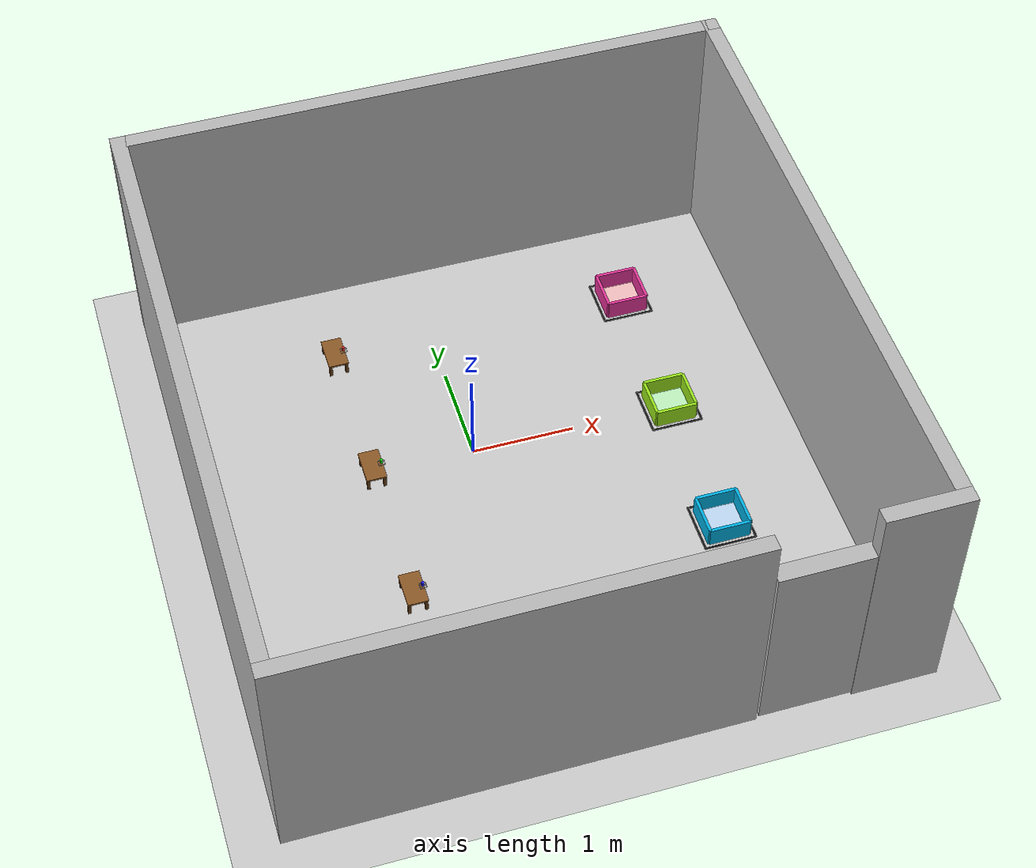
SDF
<sdf version='1.7'>
  <world name='default'>
    <!-- IFRA Link Attacher plugin for pick-and-place -->
    <plugin name="gazebo_link_attacher" filename="libgazebo_link_attacher.so"/>

    <light name='sun' type='directional'>
      <cast_shadows>1</cast_shadows>
      <pose>0 0 10 0 -0 0</pose>
      <diffuse>0.8 0.8 0.8 1</diffuse>
      <specular>0.2 0.2 0.2 1</specular>
      <attenuation>
        <range>1000</range>
        <constant>0.9</constant>
        <linear>0.01</linear>
        <quadratic>0.001</quadratic>
      </attenuation>
      <direction>-0.5 0.1 -0.9</direction>
    </light>

    <model name='ground_plane'>
      <static>1</static>
      <link name='link'>
        <collision name='collision'>
          <geometry>
            <plane>
              <normal>0 0 1</normal>
              <size>100 100</size>
            </plane>
          </geometry>
          <surface>
            <friction>
              <ode><mu>100</mu><mu2>50</mu2></ode>
            </friction>
          </surface>
        </collision>
        <visual name='visual'>
          <cast_shadows>0</cast_shadows>
          <geometry>
            <plane>
              <normal>0 0 1</normal>
              <size>100 100</size>
            </plane>
          </geometry>
          <material>
            <script>
              <uri>file://media/materials/scripts/gazebo.material</uri>
              <n>Gazebo/Grey</n>
            </script>
          </material>
        </visual>
      </link>
    </model>

    <gravity>0 0 -9.8</gravity>
    <physics type='ode'>
      <max_step_size>0.001</max_step_size>
      <real_time_factor>1</real_time_factor>
      <real_time_update_rate>1000.0</real_time_update_rate>
      <ode>
        <solver>
          <type>quick</type>
          <iters>150</iters>
          <precon_iters>0</precon_iters>
          <sor>1.400000</sor>
          <use_dynamic_moi_rescaling>1</use_dynamic_moi_rescaling>
        </solver>
        <constraints>
          <cfm>0.00001</cfm>
          <erp>0.2</erp>
          <contact_max_correcting_vel>2000.000000</contact_max_correcting_vel>
          <contact_surface_layer>0.01000</contact_surface_layer>
        </constraints>
      </ode>
    </physics>

    <scene>
      <ambient>0.4 0.4 0.4 1</ambient>
      <background>0.7 0.7 0.7 1</background>
      <shadows>1</shadows>
    </scene>

    <!-- Gazebo ROS State plugin -->
    <plugin name="gazebo_ros_state" filename="libgazebo_ros_state.so">
      <ros><namespace>/</namespace></ros>
      <update_rate>50</update_rate>
    </plugin>

    <!-- Walls (Room) -->
    <model name='room_walls'>
      <pose>-2.8231 -0.802565 0 0 0 0</pose>
      <static>1</static>
      <link name='Wall_17'>
        <collision name='Wall_17_Collision'>
          <pose>0 0 1.25 0 0 0</pose>
          <geometry><box><size>6.25 0.15 2.5</size></box></geometry>
        </collision>
        <visual name='Wall_17_Visual'>
          <pose>0 0 1.25 0 0 0</pose>
          <geometry><box><size>6.25 0.15 2.5</size></box></geometry>
          <material>
            <script>
              <uri>file://media/materials/scripts/gazebo.material</uri>
              <n>Gazebo/Bricks</n>
            </script>
          </material>
        </visual>
        <pose>0.155872 0.298732 0 0 0 -1.5708</pose>
      </link>
      <link name='Wall_18'>
        <pose>3.08087 -2.75127 0 0 0 0</pose>
        <collision name='Wall_18_Collision_0'>
          <pose>-0.860141 0 1.25 0 0 0</pose>
          <geometry><box><size>4.27972 0.15 2.5</size></box></geometry>
        </collision>
        <visual name='Wall_18_Visual_0'>
          <pose>-0.860141 0 1.25 0 0 0</pose>
          <geometry><box><size>4.27972 0.15 2.5</size></box></geometry>
          <material>
            <script>
              <uri>file://media/materials/scripts/gazebo.material</uri>
              <n>Gazebo/Bricks</n>
            </script>
          </material>
        </visual>
        <collision name='Wall_18_Collision_1'>
          <pose>2.58986 0 1.25 0 0 0</pose>
          <geometry><box><size>0.820282 0.15 2.5</size></box></geometry>
        </collision>
        <visual name='Wall_18_Visual_1'>
          <pose>2.58986 0 1.25 0 0 0</pose>
          <geometry><box><size>0.820282 0.15 2.5</size></box></geometry>
          <material>
            <script>
              <uri>file://media/materials/scripts/gazebo.material</uri>
              <n>Gazebo/Bricks</n>
            </script>
          </material>
        </visual>
      </link>
      <link name='Wall_19'>
        <collision name='Wall_19_Collision'>
          <pose>0 0 1.25 0 0 0</pose>
          <geometry><box><size>6.25 0.15 2.5</size></box></geometry>
        </collision>
        <visual name='Wall_19_Visual'>
          <pose>0 0 1.25 0 0 0</pose>
          <geometry><box><size>6.25 0.15 2.5</size></box></geometry>
          <material>
            <script>
              <uri>file://media/materials/scripts/gazebo.material</uri>
              <n>Gazebo/Bricks</n>
            </script>
          </material>
        </visual>
        <pose>6.00587 0.298732 0 0 0 1.5708</pose>
      </link>
      <link name='Wall_20'>
        <collision name='Wall_20_Collision'>
          <pose>0 0 1.25 0 0 0</pose>
          <geometry><box><size>6 0.15 2.5</size></box></geometry>
        </collision>
        <visual name='Wall_20_Visual'>
          <pose>0 0 1.25 0 0 0</pose>
          <geometry><box><size>6 0.15 2.5</size></box></geometry>
          <material>
            <script>
              <uri>file://media/materials/scripts/gazebo.material</uri>
              <n>Gazebo/Bricks</n>
            </script>
          </material>
        </visual>
        <pose>3.08087 3.34873 0 0 0 3.14159</pose>
      </link>
    </model>

    <!-- Door -->
    <model name='door_model'>
      <pose>-0.71664 2.7166 0.026996 0 0 0</pose>
      <static>1</static>
      <link name='Door_1'>
        <collision name='Door_1_Collision'>
          <pose>0 0 1 0 0 0</pose>
          <geometry><box><size>0.9 0.17 2</size></box></geometry>
        </collision>
        <visual name='Door_1_Visual'>
          <pose>0 0 1 0 0 0</pose>
          <geometry><box><size>0.9 0.17 2</size></box></geometry>
          <material>
            <script>
              <uri>file://media/materials/scripts/gazebo.material</uri>
              <n>Gazebo/Grey</n>
            </script>
          </material>
        </visual>
        <pose>2.72983 -6.25268 0 0 0 0</pose>
      </link>
    </model>

    <!-- ==================== TABLES (left side) ==================== -->

    <!-- Table 1 (top-left) — green cube on top -->
    <model name='pick_table'>
      <static>1</static>
      <pose>-1.0 1.5 0.0 0 0 0</pose>
      <link name='table_link'>
        <collision name='top_collision'>
          <pose>0 0 0.14 0 0 0</pose>
          <geometry><box><size>0.20 0.35 0.02</size></box></geometry>
        </collision>
        <visual name='top_visual'>
          <pose>0 0 0.14 0 0 0</pose>
          <geometry><box><size>0.20 0.35 0.02</size></box></geometry>
          <material>
            <ambient>0.55 0.35 0.15 1</ambient>
            <diffuse>0.55 0.35 0.15 1</diffuse>
          </material>
        </visual>
        <visual name='leg1'>
          <pose>0.08 0.15 0.065 0 0 0</pose>
          <geometry><box><size>0.03 0.03 0.13</size></box></geometry>
          <material><ambient>0.4 0.25 0.1 1</ambient></material>
        </visual>
        <visual name='leg2'>
          <pose>-0.08 0.15 0.065 0 0 0</pose>
          <geometry><box><size>0.03 0.03 0.13</size></box></geometry>
          <material><ambient>0.4 0.25 0.1 1</ambient></material>
        </visual>
        <visual name='leg3'>
          <pose>0.08 -0.15 0.065 0 0 0</pose>
          <geometry><box><size>0.03 0.03 0.13</size></box></geometry>
          <material><ambient>0.4 0.25 0.1 1</ambient></material>
        </visual>
        <visual name='leg4'>
          <pose>-0.08 -0.15 0.065 0 0 0</pose>
          <geometry><box><size>0.03 0.03 0.13</size></box></geometry>
          <material><ambient>0.4 0.25 0.1 1</ambient></material>
        </visual>
      </link>
    </model>

    <!-- Red cube on Table 1 (dynamic — physically graspable) -->
    <model name='red_cube'>
      <static>false</static>
      <pose>-0.91 1.5 0.175 0 0 0</pose>
      <link name='link'>
        <gravity>true</gravity>
        <kinematic>false</kinematic>
        <inertial>
          <mass>0.001</mass>
          <inertia>
            <ixx>0.0000015</ixx><iyy>0.0000015</iyy><izz>0.0000005</izz>
            <ixy>0</ixy><ixz>0</ixz><iyz>0</iyz>
          </inertia>
        </inertial>
        <collision name='collision'>
          <geometry><box><size>0.025 0.025 0.045</size></box></geometry>
          <surface>
            <friction>
              <ode><mu>1000.0</mu><mu2>1000.0</mu2><fdir1>0 0 0</fdir1></ode>
              <torsional>
                <coefficient>1000.0</coefficient>
                <use_patch_radius>true</use_patch_radius>
                <patch_radius>0.05</patch_radius>
              </torsional>
            </friction>
            <contact>
              <ode>
                <kp>500000.0</kp><kd>50.0</kd>
                <max_vel>0.0</max_vel>
                <min_depth>0.002</min_depth>
              </ode>
            </contact>
          </surface>
        </collision>
        <visual name='visual'>
          <geometry><box><size>0.025 0.025 0.045</size></box></geometry>
          <material>
            <ambient>0.9 0.2 0.2 1</ambient>
            <diffuse>0.95 0.2 0.2 1</diffuse>
            <specular>0.3 0.3 0.3 1</specular>
            <emissive>0.3 0.05 0.05 1</emissive>
          </material>
        </visual>
      </link>
    </model>

    <!-- Table 2 (middle-left) — blue cube on top -->
    <model name='pick_table_2'>
      <static>1</static>
      <pose>-1.0 0.0 0.0 0 0 0</pose>
      <link name='table_link'>
        <collision name='top_collision'>
          <pose>0 0 0.14 0 0 0</pose>
          <geometry><box><size>0.20 0.35 0.02</size></box></geometry>
        </collision>
        <visual name='top_visual'>
          <pose>0 0 0.14 0 0 0</pose>
          <geometry><box><size>0.20 0.35 0.02</size></box></geometry>
          <material>
            <ambient>0.55 0.35 0.15 1</ambient>
            <diffuse>0.55 0.35 0.15 1</diffuse>
          </material>
        </visual>
        <visual name='leg1'><pose>0.08 0.15 0.065 0 0 0</pose>
          <geometry><box><size>0.03 0.03 0.13</size></box></geometry>
          <material><ambient>0.4 0.25 0.1 1</ambient></material></visual>
        <visual name='leg2'><pose>-0.08 0.15 0.065 0 0 0</pose>
          <geometry><box><size>0.03 0.03 0.13</size></box></geometry>
          <material><ambient>0.4 0.25 0.1 1</ambient></material></visual>
        <visual name='leg3'><pose>0.08 -0.15 0.065 0 0 0</pose>
          <geometry><box><size>0.03 0.03 0.13</size></box></geometry>
          <material><ambient>0.4 0.25 0.1 1</ambient></material></visual>
        <visual name='leg4'><pose>-0.08 -0.15 0.065 0 0 0</pose>
          <geometry><box><size>0.03 0.03 0.13</size></box></geometry>
          <material><ambient>0.4 0.25 0.1 1</ambient></material></visual>
      </link>
    </model>

    <!-- Green cube on Table 2 (dynamic — physically graspable) -->
    <model name='green_cube'>
      <static>false</static>
      <pose>-0.91 0.0 0.175 0 0 0</pose>
      <link name='link'>
        <gravity>true</gravity>
        <kinematic>false</kinematic>
        <inertial>
          <mass>0.001</mass>
          <inertia>
            <ixx>0.0000015</ixx><iyy>0.0000015</iyy><izz>0.0000005</izz>
            <ixy>0</ixy><ixz>0</ixz><iyz>0</iyz>
          </inertia>
        </inertial>
        <collision name='collision'>
          <geometry><box><size>0.025 0.025 0.045</size></box></geometry>
          <surface>
            <friction>
              <ode><mu>1000.0</mu><mu2>1000.0</mu2><fdir1>0 0 0</fdir1></ode>
              <torsional>
                <coefficient>1000.0</coefficient>
                <use_patch_radius>true</use_patch_radius>
                <patch_radius>0.05</patch_radius>
              </torsional>
            </friction>
            <contact>
              <ode>
                <kp>500000.0</kp><kd>50.0</kd>
                <max_vel>0.0</max_vel>
                <min_depth>0.002</min_depth>
              </ode>
            </contact>
          </surface>
        </collision>
        <visual name='visual'>
          <geometry><box><size>0.025 0.025 0.045</size></box></geometry>
          <material>
            <ambient>0.1 0.8 0.1 1</ambient>
            <diffuse>0.1 0.9 0.1 1</diffuse>
            <specular>0.3 0.3 0.3 1</specular>
            <emissive>0.05 0.3 0.05 1</emissive>
          </material>
        </visual>
      </link>
    </model>

    <!-- Table 3 (bottom-left) — red cube on top -->
    <model name='pick_table_3'>
      <static>1</static>
      <pose>-1.0 -1.5 0.0 0 0 0</pose>
      <link name='table_link'>
        <collision name='top_collision'>
          <pose>0 0 0.14 0 0 0</pose>
          <geometry><box><size>0.20 0.35 0.02</size></box></geometry>
        </collision>
        <visual name='top_visual'>
          <pose>0 0 0.14 0 0 0</pose>
          <geometry><box><size>0.20 0.35 0.02</size></box></geometry>
          <material>
            <ambient>0.55 0.35 0.15 1</ambient>
            <diffuse>0.55 0.35 0.15 1</diffuse>
          </material>
        </visual>
        <visual name='leg1'><pose>0.08 0.15 0.065 0 0 0</pose>
          <geometry><box><size>0.03 0.03 0.13</size></box></geometry>
          <material><ambient>0.4 0.25 0.1 1</ambient></material></visual>
        <visual name='leg2'><pose>-0.08 0.15 0.065 0 0 0</pose>
          <geometry><box><size>0.03 0.03 0.13</size></box></geometry>
          <material><ambient>0.4 0.25 0.1 1</ambient></material></visual>
        <visual name='leg3'><pose>0.08 -0.15 0.065 0 0 0</pose>
          <geometry><box><size>0.03 0.03 0.13</size></box></geometry>
          <material><ambient>0.4 0.25 0.1 1</ambient></material></visual>
        <visual name='leg4'><pose>-0.08 -0.15 0.065 0 0 0</pose>
          <geometry><box><size>0.03 0.03 0.13</size></box></geometry>
          <material><ambient>0.4 0.25 0.1 1</ambient></material></visual>
      </link>
    </model>

    <!-- Blue cube on Table 3 (dynamic — physically graspable) -->
    <model name='blue_cube'>
      <static>false</static>
      <pose>-0.91 -1.5 0.175 0 0 0</pose>
      <link name='link'>
        <gravity>true</gravity>
        <kinematic>false</kinematic>
        <inertial>
          <mass>0.001</mass>
          <inertia>
            <ixx>0.0000015</ixx><iyy>0.0000015</iyy><izz>0.0000005</izz>
            <ixy>0</ixy><ixz>0</ixz><iyz>0</iyz>
          </inertia>
        </inertial>
        <collision name='collision'>
          <geometry><box><size>0.025 0.025 0.045</size></box></geometry>
          <surface>
            <friction>
              <ode><mu>1000.0</mu><mu2>1000.0</mu2><fdir1>0 0 0</fdir1></ode>
              <torsional>
                <coefficient>1000.0</coefficient>
                <use_patch_radius>true</use_patch_radius>
                <patch_radius>0.05</patch_radius>
              </torsional>
            </friction>
            <contact>
              <ode>
                <kp>500000.0</kp><kd>50.0</kd>
                <max_vel>0.0</max_vel>
                <min_depth>0.002</min_depth>
              </ode>
            </contact>
          </surface>
        </collision>
        <visual name='visual'>
          <geometry><box><size>0.025 0.025 0.045</size></box></geometry>
          <material>
            <ambient>0.1 0.1 0.9 1</ambient>
            <diffuse>0.1 0.1 0.95 1</diffuse>
            <specular>0.3 0.3 0.3 1</specular>
            <emissive>0.05 0.05 0.3 1</emissive>
          </material>
        </visual>
      </link>
    </model>

    <!-- ==================== DROP BOXES (right side) ==================== -->

    <!-- Red box (top-right) — drop zone (magenta/pink to distinguish from red cube) -->
    <model name='red_box'>
      <static>1</static>
      <pose>2.0 1.5 0.0 0 0 0</pose>
      <link name='link'>
        <visual name='floor_visual'>
          <pose>0 0 0.005 0 0 0</pose>
          <geometry><box><size>0.40 0.40 0.01</size></box></geometry>
          <material><ambient>0.95 0.75 0.75 1</ambient><diffuse>0.95 0.75 0.75 1</diffuse></material>
        </visual>
        <collision name='floor_c'>
          <pose>0 0 0.005 0 0 0</pose>
          <geometry><box><size>0.40 0.40 0.01</size></box></geometry>
          <surface>
            <bounce>
              <restitution_coefficient>0.5</restitution_coefficient>
              <threshold>0.01</threshold>
            </bounce>
            <friction>
              <ode><mu>1.0</mu><mu2>1.0</mu2></ode>
            </friction>
            <contact>
              <ode>
                <kp>1000000</kp><kd>100</kd>
                <max_vel>1.0</max_vel>
                <min_depth>0.001</min_depth>
              </ode>
            </contact>
          </surface>
        </collision>
        <visual name='wall_front_v'>
          <pose>0.20 0 0.10 0 0 0</pose>
          <geometry><box><size>0.03 0.40 0.20</size></box></geometry>
          <material><ambient>0.9 0.2 0.6 1</ambient><diffuse>0.9 0.2 0.6 1</diffuse></material>
        </visual>
        <collision name='wall_front_c'>
          <pose>0.20 0 0.10 0 0 0</pose>
          <geometry><box><size>0.03 0.40 0.20</size></box></geometry>
          <surface>
            <bounce>
              <restitution_coefficient>0.5</restitution_coefficient>
              <threshold>0.01</threshold>
            </bounce>
            <friction>
              <ode><mu>1.0</mu><mu2>1.0</mu2></ode>
            </friction>
            <contact>
              <ode>
                <kp>1000000</kp><kd>100</kd>
                <max_vel>1.0</max_vel>
                <min_depth>0.001</min_depth>
              </ode>
            </contact>
          </surface>
        </collision>
        <visual name='wall_back_v'>
          <pose>-0.20 0 0.10 0 0 0</pose>
          <geometry><box><size>0.03 0.40 0.20</size></box></geometry>
          <material><ambient>0.9 0.2 0.6 1</ambient><diffuse>0.9 0.2 0.6 1</diffuse></material>
        </visual>
        <collision name='wall_back_c'>
          <pose>-0.20 0 0.10 0 0 0</pose>
          <geometry><box><size>0.03 0.40 0.20</size></box></geometry>
          <surface>
            <bounce>
              <restitution_coefficient>0.5</restitution_coefficient>
              <threshold>0.01</threshold>
            </bounce>
            <friction>
              <ode><mu>1.0</mu><mu2>1.0</mu2></ode>
            </friction>
            <contact>
              <ode>
                <kp>1000000</kp><kd>100</kd>
                <max_vel>1.0</max_vel>
                <min_depth>0.001</min_depth>
              </ode>
            </contact>
          </surface>
        </collision>
        <visual name='wall_left_v'>
          <pose>0 0.20 0.10 0 0 0</pose>
          <geometry><box><size>0.40 0.03 0.20</size></box></geometry>
          <material><ambient>0.9 0.2 0.6 1</ambient><diffuse>0.9 0.2 0.6 1</diffuse></material>
        </visual>
        <collision name='wall_left_c'>
          <pose>0 0.20 0.10 0 0 0</pose>
          <geometry><box><size>0.40 0.03 0.20</size></box></geometry>
          <surface>
            <bounce>
              <restitution_coefficient>0.5</restitution_coefficient>
              <threshold>0.01</threshold>
            </bounce>
            <friction>
              <ode><mu>1.0</mu><mu2>1.0</mu2></ode>
            </friction>
            <contact>
              <ode>
                <kp>1000000</kp><kd>100</kd>
                <max_vel>1.0</max_vel>
                <min_depth>0.001</min_depth>
              </ode>
            </contact>
          </surface>
        </collision>
        <visual name='wall_right_v'>
          <pose>0 -0.20 0.10 0 0 0</pose>
          <geometry><box><size>0.40 0.03 0.20</size></box></geometry>
          <material><ambient>0.9 0.2 0.6 1</ambient><diffuse>0.9 0.2 0.6 1</diffuse></material>
        </visual>
        <collision name='wall_right_c'>
          <pose>0 -0.20 0.10 0 0 0</pose>
          <geometry><box><size>0.40 0.03 0.20</size></box></geometry>
          <surface>
            <bounce>
              <restitution_coefficient>0.5</restitution_coefficient>
              <threshold>0.01</threshold>
            </bounce>
            <friction>
              <ode><mu>1.0</mu><mu2>1.0</mu2></ode>
            </friction>
            <contact>
              <ode>
                <kp>1000000</kp><kd>100</kd>
                <max_vel>1.0</max_vel>
                <min_depth>0.001</min_depth>
              </ode>
            </contact>
          </surface>
        </collision>
      </link>
    </model>

    <!-- Green box (middle-right) — drop zone (yellow-lime to distinguish from green cube) -->
    <model name='green_box'>
      <static>1</static>
      <pose>2.0 0.0 0.0 0 0 0</pose>
      <link name='link'>
        <visual name='floor_visual'>
          <pose>0 0 0.005 0 0 0</pose>
          <geometry><box><size>0.40 0.40 0.01</size></box></geometry>
          <material><ambient>0.75 0.95 0.75 1</ambient><diffuse>0.75 0.95 0.75 1</diffuse></material>
        </visual>
        <collision name='floor_c'>
          <pose>0 0 0.005 0 0 0</pose>
          <geometry><box><size>0.40 0.40 0.01</size></box></geometry>
          <surface>
            <bounce>
              <restitution_coefficient>0.5</restitution_coefficient>
              <threshold>0.01</threshold>
            </bounce>
            <friction>
              <ode><mu>1.0</mu><mu2>1.0</mu2></ode>
            </friction>
            <contact>
              <ode>
                <kp>1000000</kp><kd>100</kd>
                <max_vel>1.0</max_vel>
                <min_depth>0.001</min_depth>
              </ode>
            </contact>
          </surface>
        </collision>
        <visual name='wall_front_v'>
          <pose>0.20 0 0.10 0 0 0</pose>
          <geometry><box><size>0.03 0.40 0.20</size></box></geometry>
          <material><ambient>0.6 0.9 0.1 1</ambient><diffuse>0.6 0.9 0.1 1</diffuse></material>
        </visual>
        <collision name='wall_front_c'>
          <pose>0.20 0 0.10 0 0 0</pose>
          <geometry><box><size>0.03 0.40 0.20</size></box></geometry>
          <surface>
            <bounce>
              <restitution_coefficient>0.5</restitution_coefficient>
              <threshold>0.01</threshold>
            </bounce>
            <friction>
              <ode><mu>1.0</mu><mu2>1.0</mu2></ode>
            </friction>
            <contact>
              <ode>
                <kp>1000000</kp><kd>100</kd>
                <max_vel>1.0</max_vel>
                <min_depth>0.001</min_depth>
              </ode>
            </contact>
          </surface>
        </collision>
        <visual name='wall_back_v'>
          <pose>-0.20 0 0.10 0 0 0</pose>
          <geometry><box><size>0.03 0.40 0.20</size></box></geometry>
          <material><ambient>0.6 0.9 0.1 1</ambient><diffuse>0.6 0.9 0.1 1</diffuse></material>
        </visual>
        <collision name='wall_back_c'>
          <pose>-0.20 0 0.10 0 0 0</pose>
          <geometry><box><size>0.03 0.40 0.20</size></box></geometry>
          <surface>
            <bounce>
              <restitution_coefficient>0.5</restitution_coefficient>
              <threshold>0.01</threshold>
            </bounce>
            <friction>
              <ode><mu>1.0</mu><mu2>1.0</mu2></ode>
            </friction>
            <contact>
              <ode>
                <kp>1000000</kp><kd>100</kd>
                <max_vel>1.0</max_vel>
                <min_depth>0.001</min_depth>
              </ode>
            </contact>
          </surface>
        </collision>
        <visual name='wall_left_v'>
          <pose>0 0.20 0.10 0 0 0</pose>
          <geometry><box><size>0.40 0.03 0.20</size></box></geometry>
          <material><ambient>0.6 0.9 0.1 1</ambient><diffuse>0.6 0.9 0.1 1</diffuse></material>
        </visual>
        <collision name='wall_left_c'>
          <pose>0 0.20 0.10 0 0 0</pose>
          <geometry><box><size>0.40 0.03 0.20</size></box></geometry>
          <surface>
            <bounce>
              <restitution_coefficient>0.5</restitution_coefficient>
              <threshold>0.01</threshold>
            </bounce>
            <friction>
              <ode><mu>1.0</mu><mu2>1.0</mu2></ode>
            </friction>
            <contact>
              <ode>
                <kp>1000000</kp><kd>100</kd>
                <max_vel>1.0</max_vel>
                <min_depth>0.001</min_depth>
              </ode>
            </contact>
          </surface>
        </collision>
        <visual name='wall_right_v'>
          <pose>0 -0.20 0.10 0 0 0</pose>
          <geometry><box><size>0.40 0.03 0.20</size></box></geometry>
          <material><ambient>0.6 0.9 0.1 1</ambient><diffuse>0.6 0.9 0.1 1</diffuse></material>
        </visual>
        <collision name='wall_right_c'>
          <pose>0 -0.20 0.10 0 0 0</pose>
          <geometry><box><size>0.40 0.03 0.20</size></box></geometry>
          <surface>
            <bounce>
              <restitution_coefficient>0.5</restitution_coefficient>
              <threshold>0.01</threshold>
            </bounce>
            <friction>
              <ode><mu>1.0</mu><mu2>1.0</mu2></ode>
            </friction>
            <contact>
              <ode>
                <kp>1000000</kp><kd>100</kd>
                <max_vel>1.0</max_vel>
                <min_depth>0.001</min_depth>
              </ode>
            </contact>
          </surface>
        </collision>
      </link>
    </model>

    <!-- Blue box (bottom-right) — drop zone (cyan/turquoise to distinguish from blue cube) -->
    <model name='blue_box'>
      <static>1</static>
      <pose>2.0 -1.5 0.0 0 0 0</pose>
      <link name='link'>
        <visual name='floor_visual'>
          <pose>0 0 0.005 0 0 0</pose>
          <geometry><box><size>0.40 0.40 0.01</size></box></geometry>
          <material><ambient>0.75 0.85 0.95 1</ambient><diffuse>0.75 0.85 0.95 1</diffuse></material>
        </visual>
        <collision name='floor_c'>
          <pose>0 0 0.005 0 0 0</pose>
          <geometry><box><size>0.40 0.40 0.01</size></box></geometry>
          <surface>
            <bounce>
              <restitution_coefficient>0.5</restitution_coefficient>
              <threshold>0.01</threshold>
            </bounce>
            <friction>
              <ode><mu>1.0</mu><mu2>1.0</mu2></ode>
            </friction>
            <contact>
              <ode>
                <kp>1000000</kp><kd>100</kd>
                <max_vel>1.0</max_vel>
                <min_depth>0.001</min_depth>
              </ode>
            </contact>
          </surface>
        </collision>
        <visual name='wall_front_v'>
          <pose>0.20 0 0.10 0 0 0</pose>
          <geometry><box><size>0.03 0.40 0.20</size></box></geometry>
          <material><ambient>0.0 0.7 0.9 1</ambient><diffuse>0.0 0.7 0.9 1</diffuse></material>
        </visual>
        <collision name='wall_front_c'>
          <pose>0.20 0 0.10 0 0 0</pose>
          <geometry><box><size>0.03 0.40 0.20</size></box></geometry>
          <surface>
            <bounce>
              <restitution_coefficient>0.5</restitution_coefficient>
              <threshold>0.01</threshold>
            </bounce>
            <friction>
              <ode><mu>1.0</mu><mu2>1.0</mu2></ode>
            </friction>
            <contact>
              <ode>
                <kp>1000000</kp><kd>100</kd>
                <max_vel>1.0</max_vel>
                <min_depth>0.001</min_depth>
              </ode>
            </contact>
          </surface>
        </collision>
        <visual name='wall_back_v'>
          <pose>-0.20 0 0.10 0 0 0</pose>
          <geometry><box><size>0.03 0.40 0.20</size></box></geometry>
          <material><ambient>0.0 0.7 0.9 1</ambient><diffuse>0.0 0.7 0.9 1</diffuse></material>
        </visual>
        <collision name='wall_back_c'>
          <pose>-0.20 0 0.10 0 0 0</pose>
          <geometry><box><size>0.03 0.40 0.20</size></box></geometry>
          <surface>
            <bounce>
              <restitution_coefficient>0.5</restitution_coefficient>
              <threshold>0.01</threshold>
            </bounce>
            <friction>
              <ode><mu>1.0</mu><mu2>1.0</mu2></ode>
            </friction>
            <contact>
              <ode>
                <kp>1000000</kp><kd>100</kd>
                <max_vel>1.0</max_vel>
                <min_depth>0.001</min_depth>
              </ode>
            </contact>
          </surface>
        </collision>
        <visual name='wall_left_v'>
          <pose>0 0.20 0.10 0 0 0</pose>
          <geometry><box><size>0.40 0.03 0.20</size></box></geometry>
          <material><ambient>0.0 0.7 0.9 1</ambient><diffuse>0.0 0.7 0.9 1</diffuse></material>
        </visual>
        <collision name='wall_left_c'>
          <pose>0 0.20 0.10 0 0 0</pose>
          <geometry><box><size>0.40 0.03 0.20</size></box></geometry>
          <surface>
            <bounce>
              <restitution_coefficient>0.5</restitution_coefficient>
              <threshold>0.01</threshold>
            </bounce>
            <friction>
              <ode><mu>1.0</mu><mu2>1.0</mu2></ode>
            </friction>
            <contact>
              <ode>
                <kp>1000000</kp><kd>100</kd>
                <max_vel>1.0</max_vel>
                <min_depth>0.001</min_depth>
              </ode>
            </contact>
          </surface>
        </collision>
        <visual name='wall_right_v'>
          <pose>0 -0.20 0.10 0 0 0</pose>
          <geometry><box><size>0.40 0.03 0.20</size></box></geometry>
          <material><ambient>0.0 0.7 0.9 1</ambient><diffuse>0.0 0.7 0.9 1</diffuse></material>
        </visual>
        <collision name='wall_right_c'>
          <pose>0 -0.20 0.10 0 0 0</pose>
          <geometry><box><size>0.40 0.03 0.20</size></box></geometry>
          <surface>
            <bounce>
              <restitution_coefficient>0.5</restitution_coefficient>
              <threshold>0.01</threshold>
            </bounce>
            <friction>
              <ode><mu>1.0</mu><mu2>1.0</mu2></ode>
            </friction>
            <contact>
              <ode>
                <kp>1000000</kp><kd>100</kd>
                <max_vel>1.0</max_vel>
                <min_depth>0.001</min_depth>
              </ode>
            </contact>
          </surface>
        </collision>
      </link>
    </model>

    <!-- ==================== BLACK BORDERS ==================== -->

    <!-- Black border around blue cube on Table 1 -->
    <model name='border_cube_blue'>
      <static>true</static>
      <pose>-0.91 1.5 0.151 0 0 0</pose>
      <link name='link'>
        <visual name='top'><pose>0 0.03 0 0 0 0</pose>
          <geometry><box><size>0.065 0.005 0.003</size></box></geometry>
          <material><ambient>0 0 0 1</ambient><diffuse>0 0 0 1</diffuse></material></visual>
        <visual name='bot'><pose>0 -0.03 0 0 0 0</pose>
          <geometry><box><size>0.065 0.005 0.003</size></box></geometry>
          <material><ambient>0 0 0 1</ambient><diffuse>0 0 0 1</diffuse></material></visual>
        <visual name='lft'><pose>-0.03 0 0 0 0 0</pose>
          <geometry><box><size>0.005 0.065 0.003</size></box></geometry>
          <material><ambient>0 0 0 1</ambient><diffuse>0 0 0 1</diffuse></material></visual>
        <visual name='rgt'><pose>0.03 0 0 0 0 0</pose>
          <geometry><box><size>0.005 0.065 0.003</size></box></geometry>
          <material><ambient>0 0 0 1</ambient><diffuse>0 0 0 1</diffuse></material></visual>
      </link>
    </model>

    <!-- Black border around red cube on Table 2 -->
    <model name='border_cube_red'>
      <static>true</static>
      <pose>-0.91 0.0 0.151 0 0 0</pose>
      <link name='link'>
        <visual name='top'><pose>0 0.03 0 0 0 0</pose>
          <geometry><box><size>0.065 0.005 0.003</size></box></geometry>
          <material><ambient>0 0 0 1</ambient><diffuse>0 0 0 1</diffuse></material></visual>
        <visual name='bot'><pose>0 -0.03 0 0 0 0</pose>
          <geometry><box><size>0.065 0.005 0.003</size></box></geometry>
          <material><ambient>0 0 0 1</ambient><diffuse>0 0 0 1</diffuse></material></visual>
        <visual name='lft'><pose>-0.03 0 0 0 0 0</pose>
          <geometry><box><size>0.005 0.065 0.003</size></box></geometry>
          <material><ambient>0 0 0 1</ambient><diffuse>0 0 0 1</diffuse></material></visual>
        <visual name='rgt'><pose>0.03 0 0 0 0 0</pose>
          <geometry><box><size>0.005 0.065 0.003</size></box></geometry>
          <material><ambient>0 0 0 1</ambient><diffuse>0 0 0 1</diffuse></material></visual>
      </link>
    </model>

    <!-- Black border around green cube on Table 3 -->
    <model name='border_cube_green'>
      <static>true</static>
      <pose>-0.91 -1.5 0.151 0 0 0</pose>
      <link name='link'>
        <visual name='top'><pose>0 0.03 0 0 0 0</pose>
          <geometry><box><size>0.065 0.005 0.003</size></box></geometry>
          <material><ambient>0 0 0 1</ambient><diffuse>0 0 0 1</diffuse></material></visual>
        <visual name='bot'><pose>0 -0.03 0 0 0 0</pose>
          <geometry><box><size>0.065 0.005 0.003</size></box></geometry>
          <material><ambient>0 0 0 1</ambient><diffuse>0 0 0 1</diffuse></material></visual>
        <visual name='lft'><pose>-0.03 0 0 0 0 0</pose>
          <geometry><box><size>0.005 0.065 0.003</size></box></geometry>
          <material><ambient>0 0 0 1</ambient><diffuse>0 0 0 1</diffuse></material></visual>
        <visual name='rgt'><pose>0.03 0 0 0 0 0</pose>
          <geometry><box><size>0.005 0.065 0.003</size></box></geometry>
          <material><ambient>0 0 0 1</ambient><diffuse>0 0 0 1</diffuse></material></visual>
      </link>
    </model>

    <!-- Black border around red drop zone -->
    <model name='border_drop_red'>
      <static>true</static>
      <pose>2.0 1.5 0.003 0 0 0</pose>
      <link name='link'>
        <visual name='top'><pose>0 0.25 0 0 0 0</pose>
          <geometry><box><size>0.52 0.02 0.006</size></box></geometry>
          <material><ambient>0 0 0 1</ambient><diffuse>0 0 0 1</diffuse></material></visual>
        <visual name='bot'><pose>0 -0.25 0 0 0 0</pose>
          <geometry><box><size>0.52 0.02 0.006</size></box></geometry>
          <material><ambient>0 0 0 1</ambient><diffuse>0 0 0 1</diffuse></material></visual>
        <visual name='lft'><pose>-0.25 0 0 0 0 0</pose>
          <geometry><box><size>0.02 0.52 0.006</size></box></geometry>
          <material><ambient>0 0 0 1</ambient><diffuse>0 0 0 1</diffuse></material></visual>
        <visual name='rgt'><pose>0.25 0 0 0 0 0</pose>
          <geometry><box><size>0.02 0.52 0.006</size></box></geometry>
          <material><ambient>0 0 0 1</ambient><diffuse>0 0 0 1</diffuse></material></visual>
      </link>
    </model>

    <!-- Black border around green drop zone -->
    <model name='border_drop_green'>
      <static>true</static>
      <pose>2.0 0.0 0.003 0 0 0</pose>
      <link name='link'>
        <visual name='top'><pose>0 0.25 0 0 0 0</pose>
          <geometry><box><size>0.52 0.02 0.006</size></box></geometry>
          <material><ambient>0 0 0 1</ambient><diffuse>0 0 0 1</diffuse></material></visual>
        <visual name='bot'><pose>0 -0.25 0 0 0 0</pose>
          <geometry><box><size>0.52 0.02 0.006</size></box></geometry>
          <material><ambient>0 0 0 1</ambient><diffuse>0 0 0 1</diffuse></material></visual>
        <visual name='lft'><pose>-0.25 0 0 0 0 0</pose>
          <geometry><box><size>0.02 0.52 0.006</size></box></geometry>
          <material><ambient>0 0 0 1</ambient><diffuse>0 0 0 1</diffuse></material></visual>
        <visual name='rgt'><pose>0.25 0 0 0 0 0</pose>
          <geometry><box><size>0.02 0.52 0.006</size></box></geometry>
          <material><ambient>0 0 0 1</ambient><diffuse>0 0 0 1</diffuse></material></visual>
      </link>
    </model>

    <!-- Black border around blue drop zone -->
    <model name='border_drop_blue'>
      <static>true</static>
      <pose>2.0 -1.5 0.003 0 0 0</pose>
      <link name='link'>
        <visual name='top'><pose>0 0.25 0 0 0 0</pose>
          <geometry><box><size>0.52 0.02 0.006</size></box></geometry>
          <material><ambient>0 0 0 1</ambient><diffuse>0 0 0 1</diffuse></material></visual>
        <visual name='bot'><pose>0 -0.25 0 0 0 0</pose>
          <geometry><box><size>0.52 0.02 0.006</size></box></geometry>
          <material><ambient>0 0 0 1</ambient><diffuse>0 0 0 1</diffuse></material></visual>
        <visual name='lft'><pose>-0.25 0 0 0 0 0</pose>
          <geometry><box><size>0.02 0.52 0.006</size></box></geometry>
          <material><ambient>0 0 0 1</ambient><diffuse>0 0 0 1</diffuse></material></visual>
        <visual name='rgt'><pose>0.25 0 0 0 0 0</pose>
          <geometry><box><size>0.02 0.52 0.006</size></box></geometry>
          <material><ambient>0 0 0 1</ambient><diffuse>0 0 0 1</diffuse></material></visual>
      </link>
    </model>

    <!-- Charging Dock — bottom-centre of room, against south wall -->
    <model name='charging_dock'>
      <static>1</static>
      <pose>0.5 -3.1 0.0 0 0 0</pose>
      <link name='dock_link'>
        <!-- Base platform — visual only, flush with ground so wheels roll over it -->
        <visual name='platform_v'>
          <pose>0 0 0.001 0 0 0</pose>
          <geometry><box><size>0.45 0.40 0.002</size></box></geometry>
          <material>
            <ambient>0.15 0.15 0.15 1</ambient>
            <diffuse>0.2 0.2 0.2 1</diffuse>
          </material>
        </visual>
        <!-- Back wall (charger unit) — tall enough for LIDAR (~0.29m) to hit -->
        <visual name='charger_wall_v'>
          <pose>0 -0.18 0.175 0 0 0</pose>
          <geometry><box><size>0.35 0.04 0.35</size></box></geometry>
          <material>
            <ambient>0.1 0.1 0.1 1</ambient>
            <diffuse>0.15 0.15 0.15 1</diffuse>
          </material>
        </visual>
        <collision name='charger_wall_c'>
          <pose>0 -0.18 0.175 0 0 0</pose>
          <geometry><box><size>0.35 0.04 0.35</size></box></geometry>
        </collision>
        <!-- Orange LED indicator (turns red when robot is parked/charging) -->
        <visual name='led_v'>
          <pose>0 -0.165 0.30 0 0 0</pose>
          <geometry><cylinder><radius>0.015</radius><length>0.01</length></cylinder></geometry>
          <material>
            <ambient>1.0 0.5 0.0 1</ambient>
            <diffuse>1.0 0.5 0.0 1</diffuse>
            <emissive>0.8 0.4 0.0 1</emissive>
          </material>
        </visual>
        <!-- Orange charging contact pad — distinctive color for YOLO detection -->
        <visual name='contact_pad_v'>
          <pose>0 -0.16 0.06 0 0 0</pose>
          <geometry><box><size>0.20 0.02 0.06</size></box></geometry>
          <material>
            <ambient>1.0 0.5 0.0 1</ambient>
            <diffuse>1.0 0.5 0.0 1</diffuse>
            <emissive>0.5 0.25 0.0 1</emissive>
          </material>
        </visual>
        <!-- Side guide rails — visual only, flat on ground -->
        <visual name='rail_left_v'>
          <pose>0.19 -0.05 0.003 0 0 0</pose>
          <geometry><box><size>0.02 0.30 0.006</size></box></geometry>
          <material>
            <ambient>0.3 0.3 0.0 1</ambient>
            <diffuse>0.5 0.5 0.0 1</diffuse>
          </material>
        </visual>
        <visual name='rail_right_v'>
          <pose>-0.19 -0.05 0.003 0 0 0</pose>
          <geometry><box><size>0.02 0.30 0.006</size></box></geometry>
          <material>
            <ambient>0.3 0.3 0.0 1</ambient>
            <diffuse>0.5 0.5 0.0 1</diffuse>
          </material>
        </visual>
      </link>
    </model>

    <!-- Model attachment plugin for gripper grasping (creates fixed joint) -->
    <plugin name="model_attachment_plugin" filename="libgazebo_model_attachment_plugin_lib.so"/>

    <gui fullscreen='0'>
      <camera name='user_camera'>
        <pose>0.5 -3.5 4.0 0 0.8 1.5708</pose>
        <view_controller>orbit</view_controller>
      </camera>
    </gui>
  </world>
</sdf>
